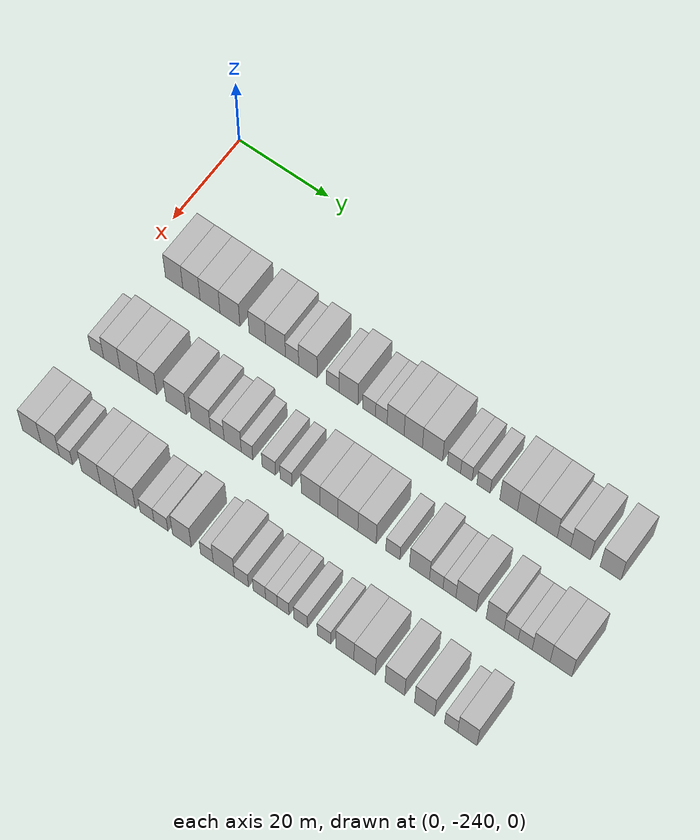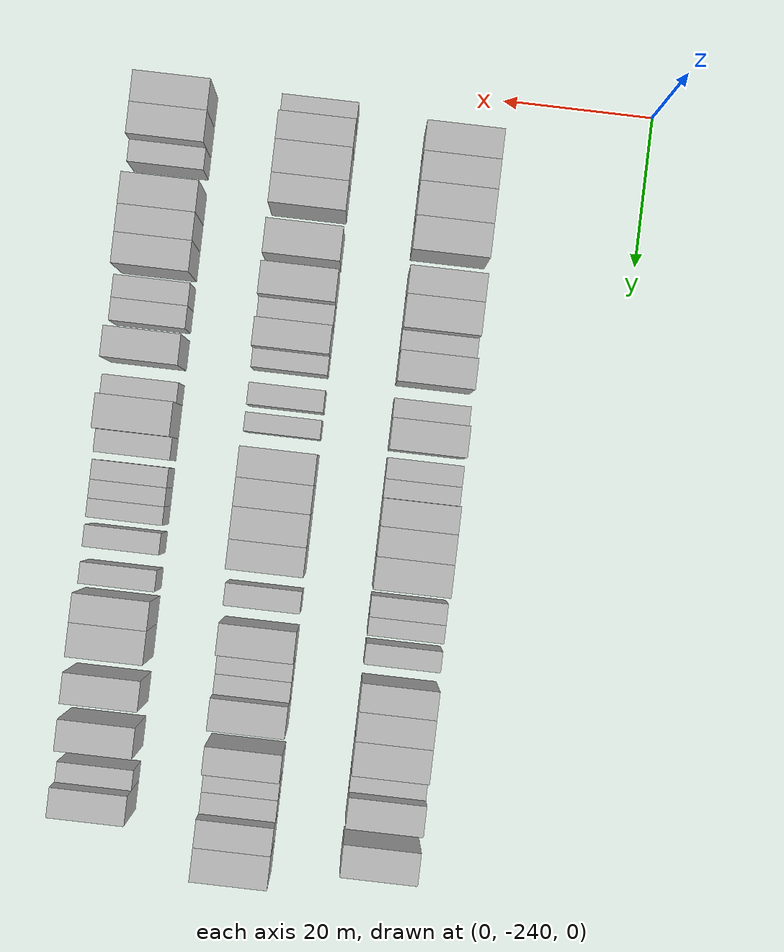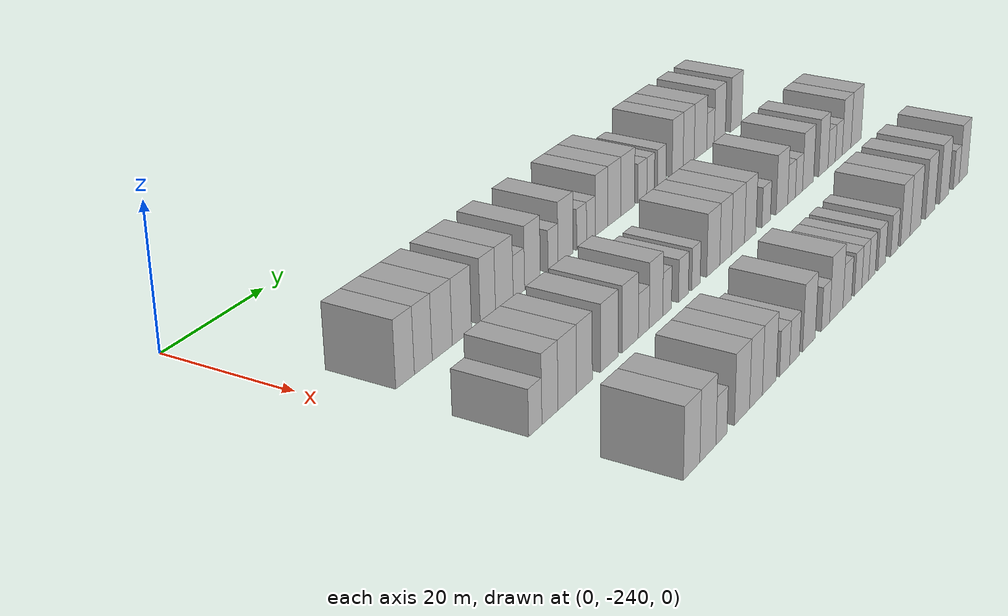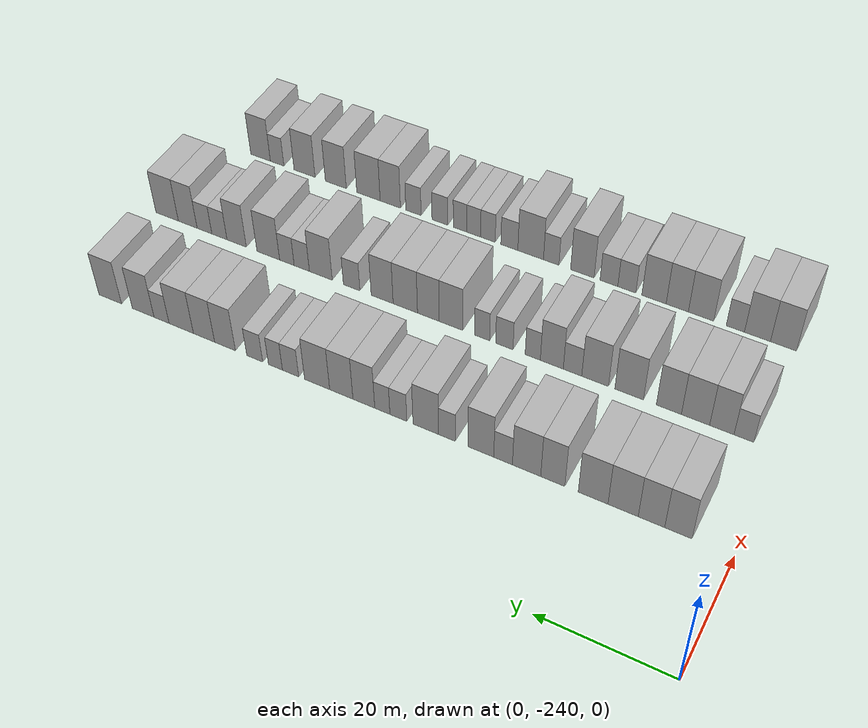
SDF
<sdf version="1.6">
 <world name="default">
  <model name="building_1">
   <static>1</static>
   <pose>25.0000 -232.0497 0 0.000000 0.000000 0.000000</pose>
   <link name="link">
    <pose>0 0 4.50 0 0 0</pose>
    <collision name="collision"><geometry><box><size>10.0000 3.9007 9.0000</size></box></geometry></collision>
    <visual name="visual">
     <cast_shadows>0</cast_shadows>
     <geometry><box><size>10.0000 3.9007 9.0000</size></box></geometry>
     <material>
      <script>
       <uri>model://HANNAS_wall/materials/scripts</uri>
       <uri>model://HANNAS_wall/materials/textures</uri>
       <name>vrc/HANNAS_wall</name>
      </script>
     </material>
    </visual>
   </link>
  </model>
  <model name="building_2">
   <static>1</static>
   <pose>25.0000 -228.1832 0 0.000000 0.000000 0.000000</pose>
   <link name="link">
    <pose>0 0 4.50 0 0 0</pose>
    <collision name="collision"><geometry><box><size>10.0000 3.8322 9.0000</size></box></geometry></collision>
    <visual name="visual">
     <cast_shadows>0</cast_shadows>
     <geometry><box><size>10.0000 3.8322 9.0000</size></box></geometry>
     <material>
      <script>
       <uri>model://HANNAS_wall/materials/scripts</uri>
       <uri>model://HANNAS_wall/materials/textures</uri>
       <name>vrc/HANNAS_wall</name>
      </script>
     </material>
    </visual>
   </link>
  </model>
  <model name="building_3">
   <static>1</static>
   <pose>25.0000 -224.0570 0 0.000000 0.000000 0.000000</pose>
   <link name="link">
    <pose>0 0 4.50 0 0 0</pose>
    <collision name="collision"><geometry><box><size>10.0000 4.4203 9.0000</size></box></geometry></collision>
    <visual name="visual">
     <cast_shadows>0</cast_shadows>
     <geometry><box><size>10.0000 4.4203 9.0000</size></box></geometry>
     <material>
      <script>
       <uri>model://HANNAS_wall/materials/scripts</uri>
       <uri>model://HANNAS_wall/materials/textures</uri>
       <name>vrc/HANNAS_wall</name>
      </script>
     </material>
    </visual>
   </link>
  </model>
  <model name="building_4">
   <static>1</static>
   <pose>25.0000 -219.6432 0 0.000000 0.000000 0.000000</pose>
   <link name="link">
    <pose>0 0 4.50 0 0 0</pose>
    <collision name="collision"><geometry><box><size>10.0000 4.4071 9.0000</size></box></geometry></collision>
    <visual name="visual">
     <cast_shadows>0</cast_shadows>
     <geometry><box><size>10.0000 4.4071 9.0000</size></box></geometry>
     <material>
      <script>
       <uri>model://HANNAS_wall/materials/scripts</uri>
       <uri>model://HANNAS_wall/materials/textures</uri>
       <name>vrc/HANNAS_wall</name>
      </script>
     </material>
    </visual>
   </link>
  </model>
  <model name="building_5">
   <static>1</static>
   <pose>25.0000 -213.6147 0 0.000000 0.000000 0.000000</pose>
   <link name="link">
    <pose>0 0 4.50 0 0 0</pose>
    <collision name="collision"><geometry><box><size>10.0000 3.6499 9.0000</size></box></geometry></collision>
    <visual name="visual">
     <cast_shadows>0</cast_shadows>
     <geometry><box><size>10.0000 3.6499 9.0000</size></box></geometry>
     <material>
      <script>
       <uri>model://HANNAS_wall/materials/scripts</uri>
       <uri>model://HANNAS_wall/materials/textures</uri>
       <name>vrc/HANNAS_wall</name>
      </script>
     </material>
    </visual>
   </link>
  </model>
  <model name="building_6">
   <static>1</static>
   <pose>25.0000 -209.6266 0 0.000000 0.000000 0.000000</pose>
   <link name="link">
    <pose>0 0 4.50 0 0 0</pose>
    <collision name="collision"><geometry><box><size>10.0000 4.3262 9.0000</size></box></geometry></collision>
    <visual name="visual">
     <cast_shadows>0</cast_shadows>
     <geometry><box><size>10.0000 4.3262 9.0000</size></box></geometry>
     <material>
      <script>
       <uri>model://HANNAS_wall/materials/scripts</uri>
       <uri>model://HANNAS_wall/materials/textures</uri>
       <name>vrc/HANNAS_wall</name>
      </script>
     </material>
    </visual>
   </link>
  </model>
  <model name="building_7">
   <static>1</static>
   <pose>25.0000 -206.0211 0 0.000000 0.000000 0.000000</pose>
   <link name="link">
    <pose>0 0 3.00 0 0 0</pose>
    <collision name="collision"><geometry><box><size>10.0000 2.8849 6.0000</size></box></geometry></collision>
    <visual name="visual">
     <cast_shadows>0</cast_shadows>
     <geometry><box><size>10.0000 2.8849 6.0000</size></box></geometry>
     <material>
      <script>
       <uri>model://HANNAS_wall/materials/scripts</uri>
       <uri>model://HANNAS_wall/materials/textures</uri>
       <name>vrc/HANNAS_wall</name>
      </script>
     </material>
    </visual>
   </link>
  </model>
  <model name="building_8">
   <static>1</static>
   <pose>25.0000 -202.5647 0 0.000000 0.000000 0.000000</pose>
   <link name="link">
    <pose>0 0 4.50 0 0 0</pose>
    <collision name="collision"><geometry><box><size>10.0000 4.0280 9.0000</size></box></geometry></collision>
    <visual name="visual">
     <cast_shadows>0</cast_shadows>
     <geometry><box><size>10.0000 4.0280 9.0000</size></box></geometry>
     <material>
      <script>
       <uri>model://HANNAS_wall/materials/scripts</uri>
       <uri>model://HANNAS_wall/materials/textures</uri>
       <name>vrc/HANNAS_wall</name>
      </script>
     </material>
    </visual>
   </link>
  </model>
  <model name="building_9">
   <static>1</static>
   <pose>25.0000 -197.2257 0 0.000000 0.000000 0.000000</pose>
   <link name="link">
    <pose>0 0 3.00 0 0 0</pose>
    <collision name="collision"><geometry><box><size>10.0000 2.6500 6.0000</size></box></geometry></collision>
    <visual name="visual">
     <cast_shadows>0</cast_shadows>
     <geometry><box><size>10.0000 2.6500 6.0000</size></box></geometry>
     <material>
      <script>
       <uri>model://HANNAS_wall/materials/scripts</uri>
       <uri>model://HANNAS_wall/materials/textures</uri>
       <name>vrc/HANNAS_wall</name>
      </script>
     </material>
    </visual>
   </link>
  </model>
  <model name="building_10">
   <static>1</static>
   <pose>25.0000 -193.8493 0 0.000000 0.000000 0.000000</pose>
   <link name="link">
    <pose>0 0 4.50 0 0 0</pose>
    <collision name="collision"><geometry><box><size>10.0000 4.1030 9.0000</size></box></geometry></collision>
    <visual name="visual">
     <cast_shadows>0</cast_shadows>
     <geometry><box><size>10.0000 4.1030 9.0000</size></box></geometry>
     <material>
      <script>
       <uri>model://HANNAS_wall/materials/scripts</uri>
       <uri>model://HANNAS_wall/materials/textures</uri>
       <name>vrc/HANNAS_wall</name>
      </script>
     </material>
    </visual>
   </link>
  </model>
  <model name="building_11">
   <static>1</static>
   <pose>25.0000 -189.4213 0 0.000000 0.000000 0.000000</pose>
   <link name="link">
    <pose>0 0 3.00 0 0 0</pose>
    <collision name="collision"><geometry><box><size>10.0000 2.7529 6.0000</size></box></geometry></collision>
    <visual name="visual">
     <cast_shadows>0</cast_shadows>
     <geometry><box><size>10.0000 2.7529 6.0000</size></box></geometry>
     <material>
      <script>
       <uri>model://HANNAS_wall/materials/scripts</uri>
       <uri>model://HANNAS_wall/materials/textures</uri>
       <name>vrc/HANNAS_wall</name>
      </script>
     </material>
    </visual>
   </link>
  </model>
  <model name="building_12">
   <static>1</static>
   <pose>25.0000 -186.8052 0 0.000000 0.000000 0.000000</pose>
   <link name="link">
    <pose>0 0 3.00 0 0 0</pose>
    <collision name="collision"><geometry><box><size>10.0000 2.4793 6.0000</size></box></geometry></collision>
    <visual name="visual">
     <cast_shadows>0</cast_shadows>
     <geometry><box><size>10.0000 2.4793 6.0000</size></box></geometry>
     <material>
      <script>
       <uri>model://HANNAS_wall/materials/scripts</uri>
       <uri>model://HANNAS_wall/materials/textures</uri>
       <name>vrc/HANNAS_wall</name>
      </script>
     </material>
    </visual>
   </link>
  </model>
  <model name="building_13">
   <static>1</static>
   <pose>25.0000 -183.7613 0 0.000000 0.000000 0.000000</pose>
   <link name="link">
    <pose>0 0 4.50 0 0 0</pose>
    <collision name="collision"><geometry><box><size>10.0000 3.6085 9.0000</size></box></geometry></collision>
    <visual name="visual">
     <cast_shadows>0</cast_shadows>
     <geometry><box><size>10.0000 3.6085 9.0000</size></box></geometry>
     <material>
      <script>
       <uri>model://HANNAS_wall/materials/scripts</uri>
       <uri>model://HANNAS_wall/materials/textures</uri>
       <name>vrc/HANNAS_wall</name>
      </script>
     </material>
    </visual>
   </link>
  </model>
  <model name="building_14">
   <static>1</static>
   <pose>25.0000 -180.0130 0 0.000000 0.000000 0.000000</pose>
   <link name="link">
    <pose>0 0 4.50 0 0 0</pose>
    <collision name="collision"><geometry><box><size>10.0000 3.8881 9.0000</size></box></geometry></collision>
    <visual name="visual">
     <cast_shadows>0</cast_shadows>
     <geometry><box><size>10.0000 3.8881 9.0000</size></box></geometry>
     <material>
      <script>
       <uri>model://HANNAS_wall/materials/scripts</uri>
       <uri>model://HANNAS_wall/materials/textures</uri>
       <name>vrc/HANNAS_wall</name>
      </script>
     </material>
    </visual>
   </link>
  </model>
  <model name="building_15">
   <static>1</static>
   <pose>25.0000 -175.9496 0 0.000000 0.000000 0.000000</pose>
   <link name="link">
    <pose>0 0 4.50 0 0 0</pose>
    <collision name="collision"><geometry><box><size>10.0000 4.2389 9.0000</size></box></geometry></collision>
    <visual name="visual">
     <cast_shadows>0</cast_shadows>
     <geometry><box><size>10.0000 4.2389 9.0000</size></box></geometry>
     <material>
      <script>
       <uri>model://HANNAS_wall/materials/scripts</uri>
       <uri>model://HANNAS_wall/materials/textures</uri>
       <name>vrc/HANNAS_wall</name>
      </script>
     </material>
    </visual>
   </link>
  </model>
  <model name="building_16">
   <static>1</static>
   <pose>25.0000 -171.4326 0 0.000000 0.000000 0.000000</pose>
   <link name="link">
    <pose>0 0 3.00 0 0 0</pose>
    <collision name="collision"><geometry><box><size>10.0000 2.7951 6.0000</size></box></geometry></collision>
    <visual name="visual">
     <cast_shadows>0</cast_shadows>
     <geometry><box><size>10.0000 2.7951 6.0000</size></box></geometry>
     <material>
      <script>
       <uri>model://HANNAS_wall/materials/scripts</uri>
       <uri>model://HANNAS_wall/materials/textures</uri>
       <name>vrc/HANNAS_wall</name>
      </script>
     </material>
    </visual>
   </link>
  </model>
  <model name="building_17">
   <static>1</static>
   <pose>25.0000 -168.8290 0 0.000000 0.000000 0.000000</pose>
   <link name="link">
    <pose>0 0 3.00 0 0 0</pose>
    <collision name="collision"><geometry><box><size>10.0000 2.4120 6.0000</size></box></geometry></collision>
    <visual name="visual">
     <cast_shadows>0</cast_shadows>
     <geometry><box><size>10.0000 2.4120 6.0000</size></box></geometry>
     <material>
      <script>
       <uri>model://HANNAS_wall/materials/scripts</uri>
       <uri>model://HANNAS_wall/materials/textures</uri>
       <name>vrc/HANNAS_wall</name>
      </script>
     </material>
    </visual>
   </link>
  </model>
  <model name="building_18">
   <static>1</static>
   <pose>25.0000 -165.2349 0 0.000000 0.000000 0.000000</pose>
   <link name="link">
    <pose>0 0 3.00 0 0 0</pose>
    <collision name="collision"><geometry><box><size>10.0000 2.7762 6.0000</size></box></geometry></collision>
    <visual name="visual">
     <cast_shadows>0</cast_shadows>
     <geometry><box><size>10.0000 2.7762 6.0000</size></box></geometry>
     <material>
      <script>
       <uri>model://HANNAS_wall/materials/scripts</uri>
       <uri>model://HANNAS_wall/materials/textures</uri>
       <name>vrc/HANNAS_wall</name>
      </script>
     </material>
    </visual>
   </link>
  </model>
  <model name="building_19">
   <static>1</static>
   <pose>25.0000 -160.0012 0 0.000000 0.000000 0.000000</pose>
   <link name="link">
    <pose>0 0 4.50 0 0 0</pose>
    <collision name="collision"><geometry><box><size>10.0000 3.6912 9.0000</size></box></geometry></collision>
    <visual name="visual">
     <cast_shadows>0</cast_shadows>
     <geometry><box><size>10.0000 3.6912 9.0000</size></box></geometry>
     <material>
      <script>
       <uri>model://HANNAS_wall/materials/scripts</uri>
       <uri>model://HANNAS_wall/materials/textures</uri>
       <name>vrc/HANNAS_wall</name>
      </script>
     </material>
    </visual>
   </link>
  </model>
  <model name="building_20">
   <static>1</static>
   <pose>25.0000 -156.2559 0 0.000000 0.000000 0.000000</pose>
   <link name="link">
    <pose>0 0 4.50 0 0 0</pose>
    <collision name="collision"><geometry><box><size>10.0000 3.7994 9.0000</size></box></geometry></collision>
    <visual name="visual">
     <cast_shadows>0</cast_shadows>
     <geometry><box><size>10.0000 3.7994 9.0000</size></box></geometry>
     <material>
      <script>
       <uri>model://HANNAS_wall/materials/scripts</uri>
       <uri>model://HANNAS_wall/materials/textures</uri>
       <name>vrc/HANNAS_wall</name>
      </script>
     </material>
    </visual>
   </link>
  </model>
  <model name="building_21">
   <static>1</static>
   <pose>25.0000 -152.1520 0 0.000000 0.000000 0.000000</pose>
   <link name="link">
    <pose>0 0 4.50 0 0 0</pose>
    <collision name="collision"><geometry><box><size>10.0000 4.4084 9.0000</size></box></geometry></collision>
    <visual name="visual">
     <cast_shadows>0</cast_shadows>
     <geometry><box><size>10.0000 4.4084 9.0000</size></box></geometry>
     <material>
      <script>
       <uri>model://HANNAS_wall/materials/scripts</uri>
       <uri>model://HANNAS_wall/materials/textures</uri>
       <name>vrc/HANNAS_wall</name>
      </script>
     </material>
    </visual>
   </link>
  </model>
  <model name="building_22">
   <static>1</static>
   <pose>25.0000 -148.5729 0 0.000000 0.000000 0.000000</pose>
   <link name="link">
    <pose>0 0 3.00 0 0 0</pose>
    <collision name="collision"><geometry><box><size>10.0000 2.7499 6.0000</size></box></geometry></collision>
    <visual name="visual">
     <cast_shadows>0</cast_shadows>
     <geometry><box><size>10.0000 2.7499 6.0000</size></box></geometry>
     <material>
      <script>
       <uri>model://HANNAS_wall/materials/scripts</uri>
       <uri>model://HANNAS_wall/materials/textures</uri>
       <name>vrc/HANNAS_wall</name>
      </script>
     </material>
    </visual>
   </link>
  </model>
  <model name="building_23">
   <static>1</static>
   <pose>25.0000 -145.1866 0 0.000000 0.000000 0.000000</pose>
   <link name="link">
    <pose>0 0 4.50 0 0 0</pose>
    <collision name="collision"><geometry><box><size>10.0000 4.0226 9.0000</size></box></geometry></collision>
    <visual name="visual">
     <cast_shadows>0</cast_shadows>
     <geometry><box><size>10.0000 4.0226 9.0000</size></box></geometry>
     <material>
      <script>
       <uri>model://HANNAS_wall/materials/scripts</uri>
       <uri>model://HANNAS_wall/materials/textures</uri>
       <name>vrc/HANNAS_wall</name>
      </script>
     </material>
    </visual>
   </link>
  </model>
  <model name="building_24">
   <static>1</static>
   <pose>25.0000 -139.0597 0 0.000000 0.000000 0.000000</pose>
   <link name="link">
    <pose>0 0 4.50 0 0 0</pose>
    <collision name="collision"><geometry><box><size>10.0000 4.2311 9.0000</size></box></geometry></collision>
    <visual name="visual">
     <cast_shadows>0</cast_shadows>
     <geometry><box><size>10.0000 4.2311 9.0000</size></box></geometry>
     <material>
      <script>
       <uri>model://HANNAS_wall/materials/scripts</uri>
       <uri>model://HANNAS_wall/materials/textures</uri>
       <name>vrc/HANNAS_wall</name>
      </script>
     </material>
    </visual>
   </link>
  </model>
  <model name="building_125">
   <static>1</static>
   <pose>44.0000 -234.5255 0 0.000000 0.000000 0.000000</pose>
   <link name="link">
    <pose>0 0 3.00 0 0 0</pose>
    <collision name="collision"><geometry><box><size>10.0000 2.9490 6.0000</size></box></geometry></collision>
    <visual name="visual">
     <cast_shadows>0</cast_shadows>
     <geometry><box><size>10.0000 2.9490 6.0000</size></box></geometry>
     <material>
      <script>
       <uri>model://HANNAS_wall/materials/scripts</uri>
       <uri>model://HANNAS_wall/materials/textures</uri>
       <name>vrc/HANNAS_wall</name>
      </script>
     </material>
    </visual>
   </link>
  </model>
  <model name="building_126">
   <static>1</static>
   <pose>44.0000 -231.2252 0 0.000000 0.000000 0.000000</pose>
   <link name="link">
    <pose>0 0 4.50 0 0 0</pose>
    <collision name="collision"><geometry><box><size>10.0000 3.6515 9.0000</size></box></geometry></collision>
    <visual name="visual">
     <cast_shadows>0</cast_shadows>
     <geometry><box><size>10.0000 3.6515 9.0000</size></box></geometry>
     <material>
      <script>
       <uri>model://HANNAS_wall/materials/scripts</uri>
       <uri>model://HANNAS_wall/materials/textures</uri>
       <name>vrc/HANNAS_wall</name>
      </script>
     </material>
    </visual>
   </link>
  </model>
  <model name="building_127">
   <static>1</static>
   <pose>44.0000 -227.2568 0 0.000000 0.000000 0.000000</pose>
   <link name="link">
    <pose>0 0 4.50 0 0 0</pose>
    <collision name="collision"><geometry><box><size>10.0000 4.2854 9.0000</size></box></geometry></collision>
    <visual name="visual">
     <cast_shadows>0</cast_shadows>
     <geometry><box><size>10.0000 4.2854 9.0000</size></box></geometry>
     <material>
      <script>
       <uri>model://HANNAS_wall/materials/scripts</uri>
       <uri>model://HANNAS_wall/materials/textures</uri>
       <name>vrc/HANNAS_wall</name>
      </script>
     </material>
    </visual>
   </link>
  </model>
  <model name="building_128">
   <static>1</static>
   <pose>44.0000 -223.1972 0 0.000000 0.000000 0.000000</pose>
   <link name="link">
    <pose>0 0 4.50 0 0 0</pose>
    <collision name="collision"><geometry><box><size>10.0000 3.8338 9.0000</size></box></geometry></collision>
    <visual name="visual">
     <cast_shadows>0</cast_shadows>
     <geometry><box><size>10.0000 3.8338 9.0000</size></box></geometry>
     <material>
      <script>
       <uri>model://HANNAS_wall/materials/scripts</uri>
       <uri>model://HANNAS_wall/materials/textures</uri>
       <name>vrc/HANNAS_wall</name>
      </script>
     </material>
    </visual>
   </link>
  </model>
  <model name="building_129">
   <static>1</static>
   <pose>44.0000 -217.0484 0 0.000000 0.000000 0.000000</pose>
   <link name="link">
    <pose>0 0 4.50 0 0 0</pose>
    <collision name="collision"><geometry><box><size>10.0000 4.4639 9.0000</size></box></geometry></collision>
    <visual name="visual">
     <cast_shadows>0</cast_shadows>
     <geometry><box><size>10.0000 4.4639 9.0000</size></box></geometry>
     <material>
      <script>
       <uri>model://HANNAS_wall/materials/scripts</uri>
       <uri>model://HANNAS_wall/materials/textures</uri>
       <name>vrc/HANNAS_wall</name>
      </script>
     </material>
    </visual>
   </link>
  </model>
  <model name="building_130">
   <static>1</static>
   <pose>44.0000 -211.6941 0 0.000000 0.000000 0.000000</pose>
   <link name="link">
    <pose>0 0 4.50 0 0 0</pose>
    <collision name="collision"><geometry><box><size>10.0000 4.2447 9.0000</size></box></geometry></collision>
    <visual name="visual">
     <cast_shadows>0</cast_shadows>
     <geometry><box><size>10.0000 4.2447 9.0000</size></box></geometry>
     <material>
      <script>
       <uri>model://HANNAS_wall/materials/scripts</uri>
       <uri>model://HANNAS_wall/materials/textures</uri>
       <name>vrc/HANNAS_wall</name>
      </script>
     </material>
    </visual>
   </link>
  </model>
  <model name="building_131">
   <static>1</static>
   <pose>44.0000 -208.0944 0 0.000000 0.000000 0.000000</pose>
   <link name="link">
    <pose>0 0 3.00 0 0 0</pose>
    <collision name="collision"><geometry><box><size>10.0000 2.9547 6.0000</size></box></geometry></collision>
    <visual name="visual">
     <cast_shadows>0</cast_shadows>
     <geometry><box><size>10.0000 2.9547 6.0000</size></box></geometry>
     <material>
      <script>
       <uri>model://HANNAS_wall/materials/scripts</uri>
       <uri>model://HANNAS_wall/materials/textures</uri>
       <name>vrc/HANNAS_wall</name>
      </script>
     </material>
    </visual>
   </link>
  </model>
  <model name="building_132">
   <static>1</static>
   <pose>44.0000 -204.7592 0 0.000000 0.000000 0.000000</pose>
   <link name="link">
    <pose>0 0 4.50 0 0 0</pose>
    <collision name="collision"><geometry><box><size>10.0000 3.7157 9.0000</size></box></geometry></collision>
    <visual name="visual">
     <cast_shadows>0</cast_shadows>
     <geometry><box><size>10.0000 3.7157 9.0000</size></box></geometry>
     <material>
      <script>
       <uri>model://HANNAS_wall/materials/scripts</uri>
       <uri>model://HANNAS_wall/materials/textures</uri>
       <name>vrc/HANNAS_wall</name>
      </script>
     </material>
    </visual>
   </link>
  </model>
  <model name="building_133">
   <static>1</static>
   <pose>44.0000 -201.6659 0 0.000000 0.000000 0.000000</pose>
   <link name="link">
    <pose>0 0 3.00 0 0 0</pose>
    <collision name="collision"><geometry><box><size>10.0000 2.4707 6.0000</size></box></geometry></collision>
    <visual name="visual">
     <cast_shadows>0</cast_shadows>
     <geometry><box><size>10.0000 2.4707 6.0000</size></box></geometry>
     <material>
      <script>
       <uri>model://HANNAS_wall/materials/scripts</uri>
       <uri>model://HANNAS_wall/materials/textures</uri>
       <name>vrc/HANNAS_wall</name>
      </script>
     </material>
    </visual>
   </link>
  </model>
  <model name="building_134">
   <static>1</static>
   <pose>44.0000 -196.9922 0 0.000000 0.000000 0.000000</pose>
   <link name="link">
    <pose>0 0 3.00 0 0 0</pose>
    <collision name="collision"><geometry><box><size>10.0000 2.8767 6.0000</size></box></geometry></collision>
    <visual name="visual">
     <cast_shadows>0</cast_shadows>
     <geometry><box><size>10.0000 2.8767 6.0000</size></box></geometry>
     <material>
      <script>
       <uri>model://HANNAS_wall/materials/scripts</uri>
       <uri>model://HANNAS_wall/materials/textures</uri>
       <name>vrc/HANNAS_wall</name>
      </script>
     </material>
    </visual>
   </link>
  </model>
  <model name="building_135">
   <static>1</static>
   <pose>44.0000 -193.3022 0 0.000000 0.000000 0.000000</pose>
   <link name="link">
    <pose>0 0 3.00 0 0 0</pose>
    <collision name="collision"><geometry><box><size>10.0000 2.5033 6.0000</size></box></geometry></collision>
    <visual name="visual">
     <cast_shadows>0</cast_shadows>
     <geometry><box><size>10.0000 2.5033 6.0000</size></box></geometry>
     <material>
      <script>
       <uri>model://HANNAS_wall/materials/scripts</uri>
       <uri>model://HANNAS_wall/materials/textures</uri>
       <name>vrc/HANNAS_wall</name>
      </script>
     </material>
    </visual>
   </link>
  </model>
  <model name="building_136">
   <static>1</static>
   <pose>44.0000 -188.0518 0 0.000000 0.000000 0.000000</pose>
   <link name="link">
    <pose>0 0 4.50 0 0 0</pose>
    <collision name="collision"><geometry><box><size>10.0000 3.9976 9.0000</size></box></geometry></collision>
    <visual name="visual">
     <cast_shadows>0</cast_shadows>
     <geometry><box><size>10.0000 3.9976 9.0000</size></box></geometry>
     <material>
      <script>
       <uri>model://HANNAS_wall/materials/scripts</uri>
       <uri>model://HANNAS_wall/materials/textures</uri>
       <name>vrc/HANNAS_wall</name>
      </script>
     </material>
    </visual>
   </link>
  </model>
  <model name="building_137">
   <static>1</static>
   <pose>44.0000 -184.1902 0 0.000000 0.000000 0.000000</pose>
   <link name="link">
    <pose>0 0 4.50 0 0 0</pose>
    <collision name="collision"><geometry><box><size>10.0000 3.7255 9.0000</size></box></geometry></collision>
    <visual name="visual">
     <cast_shadows>0</cast_shadows>
     <geometry><box><size>10.0000 3.7255 9.0000</size></box></geometry>
     <material>
      <script>
       <uri>model://HANNAS_wall/materials/scripts</uri>
       <uri>model://HANNAS_wall/materials/textures</uri>
       <name>vrc/HANNAS_wall</name>
      </script>
     </material>
    </visual>
   </link>
  </model>
  <model name="building_138">
   <static>1</static>
   <pose>44.0000 -180.2118 0 0.000000 0.000000 0.000000</pose>
   <link name="link">
    <pose>0 0 4.50 0 0 0</pose>
    <collision name="collision"><geometry><box><size>10.0000 4.2313 9.0000</size></box></geometry></collision>
    <visual name="visual">
     <cast_shadows>0</cast_shadows>
     <geometry><box><size>10.0000 4.2313 9.0000</size></box></geometry>
     <material>
      <script>
       <uri>model://HANNAS_wall/materials/scripts</uri>
       <uri>model://HANNAS_wall/materials/textures</uri>
       <name>vrc/HANNAS_wall</name>
      </script>
     </material>
    </visual>
   </link>
  </model>
  <model name="building_139">
   <static>1</static>
   <pose>44.0000 -176.1757 0 0.000000 0.000000 0.000000</pose>
   <link name="link">
    <pose>0 0 4.50 0 0 0</pose>
    <collision name="collision"><geometry><box><size>10.0000 3.8410 9.0000</size></box></geometry></collision>
    <visual name="visual">
     <cast_shadows>0</cast_shadows>
     <geometry><box><size>10.0000 3.8410 9.0000</size></box></geometry>
     <material>
      <script>
       <uri>model://HANNAS_wall/materials/scripts</uri>
       <uri>model://HANNAS_wall/materials/textures</uri>
       <name>vrc/HANNAS_wall</name>
      </script>
     </material>
    </visual>
   </link>
  </model>
  <model name="building_140">
   <static>1</static>
   <pose>44.0000 -170.7840 0 0.000000 0.000000 0.000000</pose>
   <link name="link">
    <pose>0 0 3.00 0 0 0</pose>
    <collision name="collision"><geometry><box><size>10.0000 2.9425 6.0000</size></box></geometry></collision>
    <visual name="visual">
     <cast_shadows>0</cast_shadows>
     <geometry><box><size>10.0000 2.9425 6.0000</size></box></geometry>
     <material>
      <script>
       <uri>model://HANNAS_wall/materials/scripts</uri>
       <uri>model://HANNAS_wall/materials/textures</uri>
       <name>vrc/HANNAS_wall</name>
      </script>
     </material>
    </visual>
   </link>
  </model>
  <model name="building_141">
   <static>1</static>
   <pose>44.0000 -165.2461 0 0.000000 0.000000 0.000000</pose>
   <link name="link">
    <pose>0 0 4.50 0 0 0</pose>
    <collision name="collision"><geometry><box><size>10.0000 4.1332 9.0000</size></box></geometry></collision>
    <visual name="visual">
     <cast_shadows>0</cast_shadows>
     <geometry><box><size>10.0000 4.1332 9.0000</size></box></geometry>
     <material>
      <script>
       <uri>model://HANNAS_wall/materials/scripts</uri>
       <uri>model://HANNAS_wall/materials/textures</uri>
       <name>vrc/HANNAS_wall</name>
      </script>
     </material>
    </visual>
   </link>
  </model>
  <model name="building_142">
   <static>1</static>
   <pose>44.0000 -161.7877 0 0.000000 0.000000 0.000000</pose>
   <link name="link">
    <pose>0 0 3.00 0 0 0</pose>
    <collision name="collision"><geometry><box><size>10.0000 2.7837 6.0000</size></box></geometry></collision>
    <visual name="visual">
     <cast_shadows>0</cast_shadows>
     <geometry><box><size>10.0000 2.7837 6.0000</size></box></geometry>
     <material>
      <script>
       <uri>model://HANNAS_wall/materials/scripts</uri>
       <uri>model://HANNAS_wall/materials/textures</uri>
       <name>vrc/HANNAS_wall</name>
      </script>
     </material>
    </visual>
   </link>
  </model>
  <model name="building_143">
   <static>1</static>
   <pose>44.0000 -159.0605 0 0.000000 0.000000 0.000000</pose>
   <link name="link">
    <pose>0 0 3.00 0 0 0</pose>
    <collision name="collision"><geometry><box><size>10.0000 2.6708 6.0000</size></box></geometry></collision>
    <visual name="visual">
     <cast_shadows>0</cast_shadows>
     <geometry><box><size>10.0000 2.6708 6.0000</size></box></geometry>
     <material>
      <script>
       <uri>model://HANNAS_wall/materials/scripts</uri>
       <uri>model://HANNAS_wall/materials/textures</uri>
       <name>vrc/HANNAS_wall</name>
      </script>
     </material>
    </visual>
   </link>
  </model>
  <model name="building_144">
   <static>1</static>
   <pose>44.0000 -155.6243 0 0.000000 0.000000 0.000000</pose>
   <link name="link">
    <pose>0 0 4.50 0 0 0</pose>
    <collision name="collision"><geometry><box><size>10.0000 4.2017 9.0000</size></box></geometry></collision>
    <visual name="visual">
     <cast_shadows>0</cast_shadows>
     <geometry><box><size>10.0000 4.2017 9.0000</size></box></geometry>
     <material>
      <script>
       <uri>model://HANNAS_wall/materials/scripts</uri>
       <uri>model://HANNAS_wall/materials/textures</uri>
       <name>vrc/HANNAS_wall</name>
      </script>
     </material>
    </visual>
   </link>
  </model>
  <model name="building_145">
   <static>1</static>
   <pose>44.0000 -149.7010 0 0.000000 0.000000 0.000000</pose>
   <link name="link">
    <pose>0 0 4.50 0 0 0</pose>
    <collision name="collision"><geometry><box><size>10.0000 3.6448 9.0000</size></box></geometry></collision>
    <visual name="visual">
     <cast_shadows>0</cast_shadows>
     <geometry><box><size>10.0000 3.6448 9.0000</size></box></geometry>
     <material>
      <script>
       <uri>model://HANNAS_wall/materials/scripts</uri>
       <uri>model://HANNAS_wall/materials/textures</uri>
       <name>vrc/HANNAS_wall</name>
      </script>
     </material>
    </visual>
   </link>
  </model>
  <model name="building_146">
   <static>1</static>
   <pose>44.0000 -146.4363 0 0.000000 0.000000 0.000000</pose>
   <link name="link">
    <pose>0 0 3.00 0 0 0</pose>
    <collision name="collision"><geometry><box><size>10.0000 2.8845 6.0000</size></box></geometry></collision>
    <visual name="visual">
     <cast_shadows>0</cast_shadows>
     <geometry><box><size>10.0000 2.8845 6.0000</size></box></geometry>
     <material>
      <script>
       <uri>model://HANNAS_wall/materials/scripts</uri>
       <uri>model://HANNAS_wall/materials/textures</uri>
       <name>vrc/HANNAS_wall</name>
      </script>
     </material>
    </visual>
   </link>
  </model>
  <model name="building_147">
   <static>1</static>
   <pose>44.0000 -143.5807 0 0.000000 0.000000 0.000000</pose>
   <link name="link">
    <pose>0 0 3.00 0 0 0</pose>
    <collision name="collision"><geometry><box><size>10.0000 2.8268 6.0000</size></box></geometry></collision>
    <visual name="visual">
     <cast_shadows>0</cast_shadows>
     <geometry><box><size>10.0000 2.8268 6.0000</size></box></geometry>
     <material>
      <script>
       <uri>model://HANNAS_wall/materials/scripts</uri>
       <uri>model://HANNAS_wall/materials/textures</uri>
       <name>vrc/HANNAS_wall</name>
      </script>
     </material>
    </visual>
   </link>
  </model>
  <model name="building_148">
   <static>1</static>
   <pose>44.0000 -140.3526 0 0.000000 0.000000 0.000000</pose>
   <link name="link">
    <pose>0 0 4.50 0 0 0</pose>
    <collision name="collision"><geometry><box><size>10.0000 3.6293 9.0000</size></box></geometry></collision>
    <visual name="visual">
     <cast_shadows>0</cast_shadows>
     <geometry><box><size>10.0000 3.6293 9.0000</size></box></geometry>
     <material>
      <script>
       <uri>model://HANNAS_wall/materials/scripts</uri>
       <uri>model://HANNAS_wall/materials/textures</uri>
       <name>vrc/HANNAS_wall</name>
      </script>
     </material>
    </visual>
   </link>
  </model>
  <model name="building_149">
   <static>1</static>
   <pose>44.0000 -136.3524 0 0.000000 0.000000 0.000000</pose>
   <link name="link">
    <pose>0 0 4.50 0 0 0</pose>
    <collision name="collision"><geometry><box><size>10.0000 4.3711 9.0000</size></box></geometry></collision>
    <visual name="visual">
     <cast_shadows>0</cast_shadows>
     <geometry><box><size>10.0000 4.3711 9.0000</size></box></geometry>
     <material>
      <script>
       <uri>model://HANNAS_wall/materials/scripts</uri>
       <uri>model://HANNAS_wall/materials/textures</uri>
       <name>vrc/HANNAS_wall</name>
      </script>
     </material>
    </visual>
   </link>
  </model>
  <model name="building_248">
   <static>1</static>
   <pose>63.0000 -233.9763 0 0.000000 0.000000 0.000000</pose>
   <link name="link">
    <pose>0 0 4.50 0 0 0</pose>
    <collision name="collision"><geometry><box><size>10.0000 4.0474 9.0000</size></box></geometry></collision>
    <visual name="visual">
     <cast_shadows>0</cast_shadows>
     <geometry><box><size>10.0000 4.0474 9.0000</size></box></geometry>
     <material>
      <script>
       <uri>model://HANNAS_wall/materials/scripts</uri>
       <uri>model://HANNAS_wall/materials/textures</uri>
       <name>vrc/HANNAS_wall</name>
      </script>
     </material>
    </visual>
   </link>
  </model>
  <model name="building_249">
   <static>1</static>
   <pose>63.0000 -229.9111 0 0.000000 0.000000 0.000000</pose>
   <link name="link">
    <pose>0 0 4.50 0 0 0</pose>
    <collision name="collision"><geometry><box><size>10.0000 4.0829 9.0000</size></box></geometry></collision>
    <visual name="visual">
     <cast_shadows>0</cast_shadows>
     <geometry><box><size>10.0000 4.0829 9.0000</size></box></geometry>
     <material>
      <script>
       <uri>model://HANNAS_wall/materials/scripts</uri>
       <uri>model://HANNAS_wall/materials/textures</uri>
       <name>vrc/HANNAS_wall</name>
      </script>
     </material>
    </visual>
   </link>
  </model>
  <model name="building_250">
   <static>1</static>
   <pose>63.0000 -226.4261 0 0.000000 0.000000 0.000000</pose>
   <link name="link">
    <pose>0 0 3.00 0 0 0</pose>
    <collision name="collision"><geometry><box><size>10.0000 2.8870 6.0000</size></box></geometry></collision>
    <visual name="visual">
     <cast_shadows>0</cast_shadows>
     <geometry><box><size>10.0000 2.8870 6.0000</size></box></geometry>
     <material>
      <script>
       <uri>model://HANNAS_wall/materials/scripts</uri>
       <uri>model://HANNAS_wall/materials/textures</uri>
       <name>vrc/HANNAS_wall</name>
      </script>
     </material>
    </visual>
   </link>
  </model>
  <model name="building_251">
   <static>1</static>
   <pose>63.0000 -220.9391 0 0.000000 0.000000 0.000000</pose>
   <link name="link">
    <pose>0 0 4.50 0 0 0</pose>
    <collision name="collision"><geometry><box><size>10.0000 4.0870 9.0000</size></box></geometry></collision>
    <visual name="visual">
     <cast_shadows>0</cast_shadows>
     <geometry><box><size>10.0000 4.0870 9.0000</size></box></geometry>
     <material>
      <script>
       <uri>model://HANNAS_wall/materials/scripts</uri>
       <uri>model://HANNAS_wall/materials/textures</uri>
       <name>vrc/HANNAS_wall</name>
      </script>
     </material>
    </visual>
   </link>
  </model>
  <model name="building_252">
   <static>1</static>
   <pose>63.0000 -217.0838 0 0.000000 0.000000 0.000000</pose>
   <link name="link">
    <pose>0 0 4.50 0 0 0</pose>
    <collision name="collision"><geometry><box><size>10.0000 3.6237 9.0000</size></box></geometry></collision>
    <visual name="visual">
     <cast_shadows>0</cast_shadows>
     <geometry><box><size>10.0000 3.6237 9.0000</size></box></geometry>
     <material>
      <script>
       <uri>model://HANNAS_wall/materials/scripts</uri>
       <uri>model://HANNAS_wall/materials/textures</uri>
       <name>vrc/HANNAS_wall</name>
      </script>
     </material>
    </visual>
   </link>
  </model>
  <model name="building_253">
   <static>1</static>
   <pose>63.0000 -213.2735 0 0.000000 0.000000 0.000000</pose>
   <link name="link">
    <pose>0 0 4.50 0 0 0</pose>
    <collision name="collision"><geometry><box><size>10.0000 3.9969 9.0000</size></box></geometry></collision>
    <visual name="visual">
     <cast_shadows>0</cast_shadows>
     <geometry><box><size>10.0000 3.9969 9.0000</size></box></geometry>
     <material>
      <script>
       <uri>model://HANNAS_wall/materials/scripts</uri>
       <uri>model://HANNAS_wall/materials/textures</uri>
       <name>vrc/HANNAS_wall</name>
      </script>
     </material>
    </visual>
   </link>
  </model>
  <model name="building_254">
   <static>1</static>
   <pose>63.0000 -208.7792 0 0.000000 0.000000 0.000000</pose>
   <link name="link">
    <pose>0 0 3.00 0 0 0</pose>
    <collision name="collision"><geometry><box><size>10.0000 2.9918 6.0000</size></box></geometry></collision>
    <visual name="visual">
     <cast_shadows>0</cast_shadows>
     <geometry><box><size>10.0000 2.9918 6.0000</size></box></geometry>
     <material>
      <script>
       <uri>model://HANNAS_wall/materials/scripts</uri>
       <uri>model://HANNAS_wall/materials/textures</uri>
       <name>vrc/HANNAS_wall</name>
      </script>
     </material>
    </visual>
   </link>
  </model>
  <model name="building_255">
   <static>1</static>
   <pose>63.0000 -205.7846 0 0.000000 0.000000 0.000000</pose>
   <link name="link">
    <pose>0 0 3.00 0 0 0</pose>
    <collision name="collision"><geometry><box><size>10.0000 2.9974 6.0000</size></box></geometry></collision>
    <visual name="visual">
     <cast_shadows>0</cast_shadows>
     <geometry><box><size>10.0000 2.9974 6.0000</size></box></geometry>
     <material>
      <script>
       <uri>model://HANNAS_wall/materials/scripts</uri>
       <uri>model://HANNAS_wall/materials/textures</uri>
       <name>vrc/HANNAS_wall</name>
      </script>
     </material>
    </visual>
   </link>
  </model>
  <model name="building_256">
   <static>1</static>
   <pose>63.0000 -201.2871 0 0.000000 0.000000 0.000000</pose>
   <link name="link">
    <pose>0 0 4.50 0 0 0</pose>
    <collision name="collision"><geometry><box><size>10.0000 3.9977 9.0000</size></box></geometry></collision>
    <visual name="visual">
     <cast_shadows>0</cast_shadows>
     <geometry><box><size>10.0000 3.9977 9.0000</size></box></geometry>
     <material>
      <script>
       <uri>model://HANNAS_wall/materials/scripts</uri>
       <uri>model://HANNAS_wall/materials/textures</uri>
       <name>vrc/HANNAS_wall</name>
      </script>
     </material>
    </visual>
   </link>
  </model>
  <model name="building_257">
   <static>1</static>
   <pose>63.0000 -195.9522 0 0.000000 0.000000 0.000000</pose>
   <link name="link">
    <pose>0 0 3.00 0 0 0</pose>
    <collision name="collision"><geometry><box><size>10.0000 2.6721 6.0000</size></box></geometry></collision>
    <visual name="visual">
     <cast_shadows>0</cast_shadows>
     <geometry><box><size>10.0000 2.6721 6.0000</size></box></geometry>
     <material>
      <script>
       <uri>model://HANNAS_wall/materials/scripts</uri>
       <uri>model://HANNAS_wall/materials/textures</uri>
       <name>vrc/HANNAS_wall</name>
      </script>
     </material>
    </visual>
   </link>
  </model>
  <model name="building_258">
   <static>1</static>
   <pose>63.0000 -192.3829 0 0.000000 0.000000 0.000000</pose>
   <link name="link">
    <pose>0 0 4.50 0 0 0</pose>
    <collision name="collision"><geometry><box><size>10.0000 4.4664 9.0000</size></box></geometry></collision>
    <visual name="visual">
     <cast_shadows>0</cast_shadows>
     <geometry><box><size>10.0000 4.4664 9.0000</size></box></geometry>
     <material>
      <script>
       <uri>model://HANNAS_wall/materials/scripts</uri>
       <uri>model://HANNAS_wall/materials/textures</uri>
       <name>vrc/HANNAS_wall</name>
      </script>
     </material>
    </visual>
   </link>
  </model>
  <model name="building_259">
   <static>1</static>
   <pose>63.0000 -188.6561 0 0.000000 0.000000 0.000000</pose>
   <link name="link">
    <pose>0 0 3.00 0 0 0</pose>
    <collision name="collision"><geometry><box><size>10.0000 2.9873 6.0000</size></box></geometry></collision>
    <visual name="visual">
     <cast_shadows>0</cast_shadows>
     <geometry><box><size>10.0000 2.9873 6.0000</size></box></geometry>
     <material>
      <script>
       <uri>model://HANNAS_wall/materials/scripts</uri>
       <uri>model://HANNAS_wall/materials/textures</uri>
       <name>vrc/HANNAS_wall</name>
      </script>
     </material>
    </visual>
   </link>
  </model>
  <model name="building_260">
   <static>1</static>
   <pose>63.0000 -184.8627 0 0.000000 0.000000 0.000000</pose>
   <link name="link">
    <pose>0 0 3.00 0 0 0</pose>
    <collision name="collision"><geometry><box><size>10.0000 2.5994 6.0000</size></box></geometry></collision>
    <visual name="visual">
     <cast_shadows>0</cast_shadows>
     <geometry><box><size>10.0000 2.5994 6.0000</size></box></geometry>
     <material>
      <script>
       <uri>model://HANNAS_wall/materials/scripts</uri>
       <uri>model://HANNAS_wall/materials/textures</uri>
       <name>vrc/HANNAS_wall</name>
      </script>
     </material>
    </visual>
   </link>
  </model>
  <model name="building_261">
   <static>1</static>
   <pose>63.0000 -182.3311 0 0.000000 0.000000 0.000000</pose>
   <link name="link">
    <pose>0 0 3.00 0 0 0</pose>
    <collision name="collision"><geometry><box><size>10.0000 2.4638 6.0000</size></box></geometry></collision>
    <visual name="visual">
     <cast_shadows>0</cast_shadows>
     <geometry><box><size>10.0000 2.4638 6.0000</size></box></geometry>
     <material>
      <script>
       <uri>model://HANNAS_wall/materials/scripts</uri>
       <uri>model://HANNAS_wall/materials/textures</uri>
       <name>vrc/HANNAS_wall</name>
      </script>
     </material>
    </visual>
   </link>
  </model>
  <model name="building_262">
   <static>1</static>
   <pose>63.0000 -179.8764 0 0.000000 0.000000 0.000000</pose>
   <link name="link">
    <pose>0 0 3.00 0 0 0</pose>
    <collision name="collision"><geometry><box><size>10.0000 2.4457 6.0000</size></box></geometry></collision>
    <visual name="visual">
     <cast_shadows>0</cast_shadows>
     <geometry><box><size>10.0000 2.4457 6.0000</size></box></geometry>
     <material>
      <script>
       <uri>model://HANNAS_wall/materials/scripts</uri>
       <uri>model://HANNAS_wall/materials/textures</uri>
       <name>vrc/HANNAS_wall</name>
      </script>
     </material>
    </visual>
   </link>
  </model>
  <model name="building_263">
   <static>1</static>
   <pose>63.0000 -176.2255 0 0.000000 0.000000 0.000000</pose>
   <link name="link">
    <pose>0 0 3.00 0 0 0</pose>
    <collision name="collision"><geometry><box><size>10.0000 2.8562 6.0000</size></box></geometry></collision>
    <visual name="visual">
     <cast_shadows>0</cast_shadows>
     <geometry><box><size>10.0000 2.8562 6.0000</size></box></geometry>
     <material>
      <script>
       <uri>model://HANNAS_wall/materials/scripts</uri>
       <uri>model://HANNAS_wall/materials/textures</uri>
       <name>vrc/HANNAS_wall</name>
      </script>
     </material>
    </visual>
   </link>
  </model>
  <model name="building_264">
   <static>1</static>
   <pose>63.0000 -171.3923 0 0.000000 0.000000 0.000000</pose>
   <link name="link">
    <pose>0 0 3.00 0 0 0</pose>
    <collision name="collision"><geometry><box><size>10.0000 2.8102 6.0000</size></box></geometry></collision>
    <visual name="visual">
     <cast_shadows>0</cast_shadows>
     <geometry><box><size>10.0000 2.8102 6.0000</size></box></geometry>
     <material>
      <script>
       <uri>model://HANNAS_wall/materials/scripts</uri>
       <uri>model://HANNAS_wall/materials/textures</uri>
       <name>vrc/HANNAS_wall</name>
      </script>
     </material>
    </visual>
   </link>
  </model>
  <model name="building_265">
   <static>1</static>
   <pose>63.0000 -167.0942 0 0.000000 0.000000 0.000000</pose>
   <link name="link">
    <pose>0 0 4.50 0 0 0</pose>
    <collision name="collision"><geometry><box><size>10.0000 3.7859 9.0000</size></box></geometry></collision>
    <visual name="visual">
     <cast_shadows>0</cast_shadows>
     <geometry><box><size>10.0000 3.7859 9.0000</size></box></geometry>
     <material>
      <script>
       <uri>model://HANNAS_wall/materials/scripts</uri>
       <uri>model://HANNAS_wall/materials/textures</uri>
       <name>vrc/HANNAS_wall</name>
      </script>
     </material>
    </visual>
   </link>
  </model>
  <model name="building_266">
   <static>1</static>
   <pose>63.0000 -163.0035 0 0.000000 0.000000 0.000000</pose>
   <link name="link">
    <pose>0 0 4.50 0 0 0</pose>
    <collision name="collision"><geometry><box><size>10.0000 4.3954 9.0000</size></box></geometry></collision>
    <visual name="visual">
     <cast_shadows>0</cast_shadows>
     <geometry><box><size>10.0000 4.3954 9.0000</size></box></geometry>
     <material>
      <script>
       <uri>model://HANNAS_wall/materials/scripts</uri>
       <uri>model://HANNAS_wall/materials/textures</uri>
       <name>vrc/HANNAS_wall</name>
      </script>
     </material>
    </visual>
   </link>
  </model>
  <model name="building_267">
   <static>1</static>
   <pose>63.0000 -156.8073 0 0.000000 0.000000 0.000000</pose>
   <link name="link">
    <pose>0 0 4.50 0 0 0</pose>
    <collision name="collision"><geometry><box><size>10.0000 3.9971 9.0000</size></box></geometry></collision>
    <visual name="visual">
     <cast_shadows>0</cast_shadows>
     <geometry><box><size>10.0000 3.9971 9.0000</size></box></geometry>
     <material>
      <script>
       <uri>model://HANNAS_wall/materials/scripts</uri>
       <uri>model://HANNAS_wall/materials/textures</uri>
       <name>vrc/HANNAS_wall</name>
      </script>
     </material>
    </visual>
   </link>
  </model>
  <model name="building_268">
   <static>1</static>
   <pose>63.0000 -150.7731 0 0.000000 0.000000 0.000000</pose>
   <link name="link">
    <pose>0 0 4.50 0 0 0</pose>
    <collision name="collision"><geometry><box><size>10.0000 4.0712 9.0000</size></box></geometry></collision>
    <visual name="visual">
     <cast_shadows>0</cast_shadows>
     <geometry><box><size>10.0000 4.0712 9.0000</size></box></geometry>
     <material>
      <script>
       <uri>model://HANNAS_wall/materials/scripts</uri>
       <uri>model://HANNAS_wall/materials/textures</uri>
       <name>vrc/HANNAS_wall</name>
      </script>
     </material>
    </visual>
   </link>
  </model>
  <model name="building_269">
   <static>1</static>
   <pose>63.0000 -145.4074 0 0.000000 0.000000 0.000000</pose>
   <link name="link">
    <pose>0 0 3.00 0 0 0</pose>
    <collision name="collision"><geometry><box><size>10.0000 2.6603 6.0000</size></box></geometry></collision>
    <visual name="visual">
     <cast_shadows>0</cast_shadows>
     <geometry><box><size>10.0000 2.6603 6.0000</size></box></geometry>
     <material>
      <script>
       <uri>model://HANNAS_wall/materials/scripts</uri>
       <uri>model://HANNAS_wall/materials/textures</uri>
       <name>vrc/HANNAS_wall</name>
      </script>
     </material>
    </visual>
   </link>
  </model>
  <model name="building_270">
   <static>1</static>
   <pose>63.0000 -142.1344 0 0.000000 0.000000 0.000000</pose>
   <link name="link">
    <pose>0 0 4.50 0 0 0</pose>
    <collision name="collision"><geometry><box><size>10.0000 3.8857 9.0000</size></box></geometry></collision>
    <visual name="visual">
     <cast_shadows>0</cast_shadows>
     <geometry><box><size>10.0000 3.8857 9.0000</size></box></geometry>
     <material>
      <script>
       <uri>model://HANNAS_wall/materials/scripts</uri>
       <uri>model://HANNAS_wall/materials/textures</uri>
       <name>vrc/HANNAS_wall</name>
      </script>
     </material>
    </visual>
   </link>
  </model>
 </world>
</sdf>
